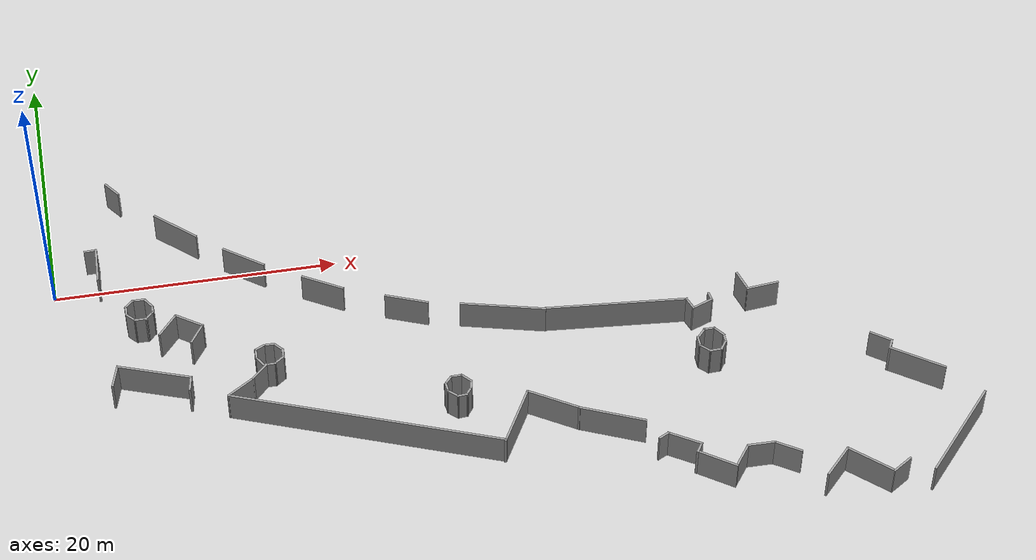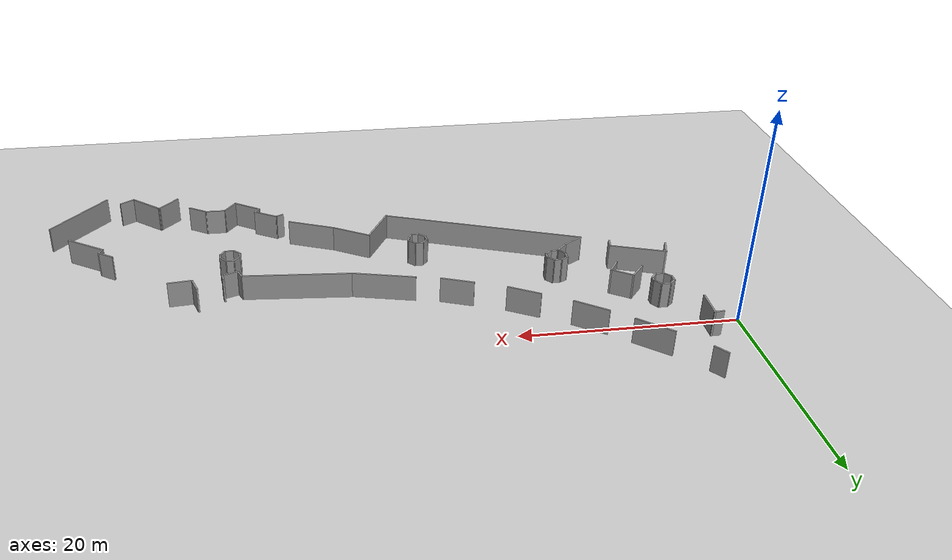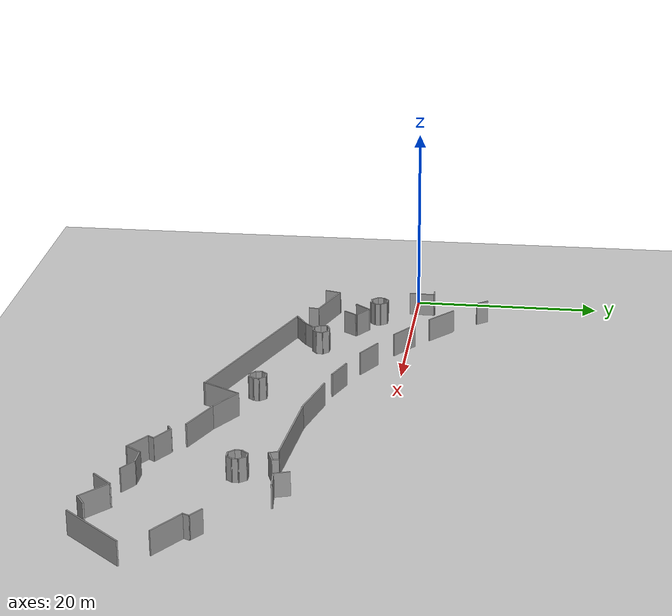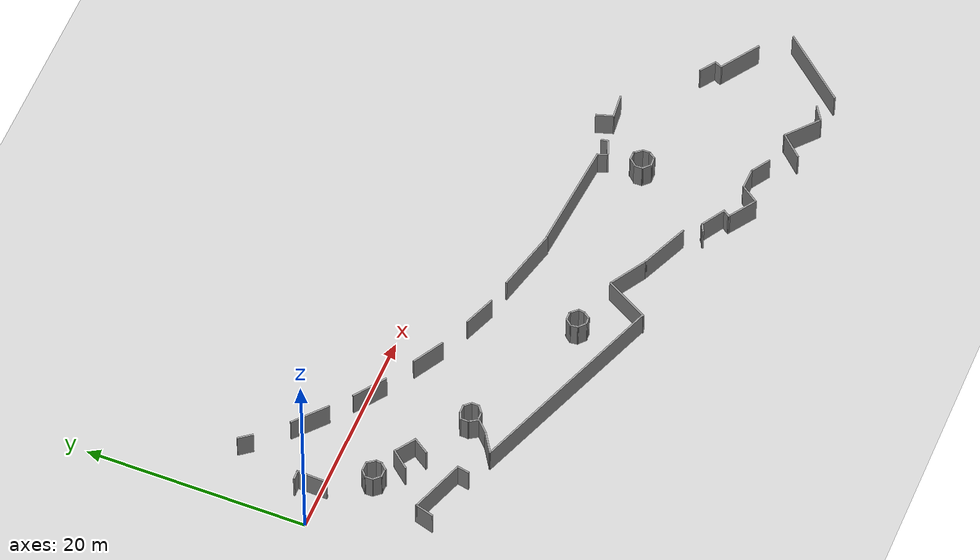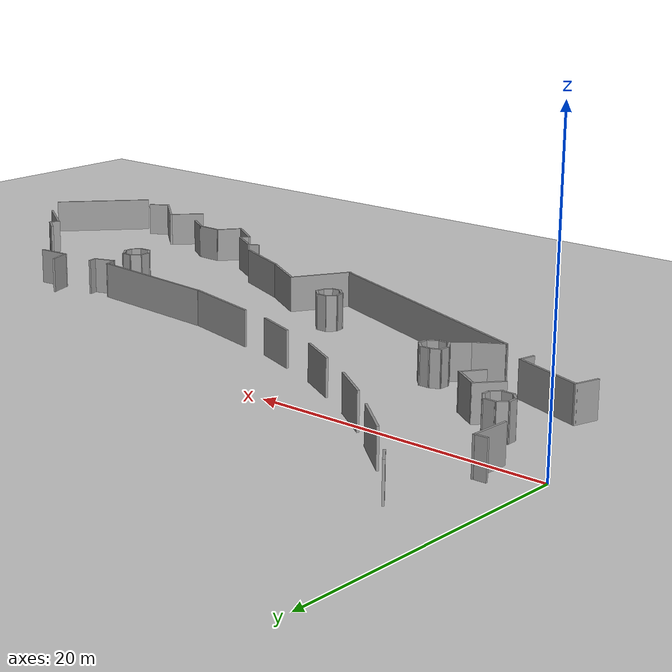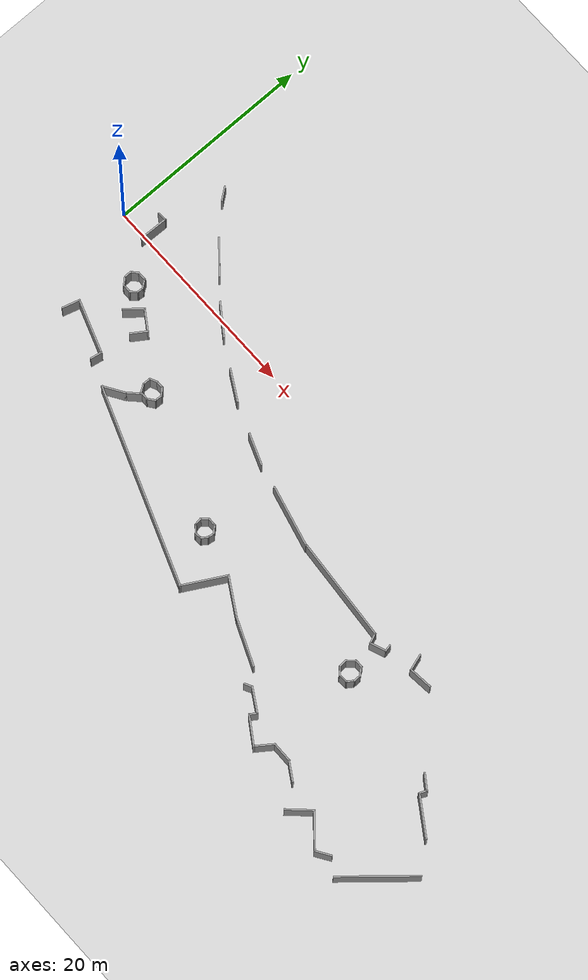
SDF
<sdf version="1.6">
 <world name="default">
  <model name="ground_plane">
   <static>1</static>
   <link name="link">
    <collision name="collision">
     <geometry><plane><normal>0 0 1</normal><size>100 100</size></plane></geometry>
     <surface><friction><ode><mu>100</mu><mu2>50</mu2></ode></friction></surface>
    </collision>
    <visual name="visual">
     <cast_shadows>0</cast_shadows>
     <geometry><plane><normal>0 0 1</normal><size>100 100</size></plane></geometry>
     <material>
      <script><uri>file://media/materials/scripts/gazebo.material</uri><name>Gazebo/Grey</name></script>
     </material>
    </visual>
   </link>
  </model>
  <model name="mall_new_reduce_size">
   <pose>-6.8092 7.5529 0 0 -0 0</pose>
   <link name="Wall_134">
    <collision name="Wall_134_Collision">
     <geometry><box><size>1.4429 0.15 2.5</size></box></geometry>
     <pose>0 0 1.25 0 -0 0</pose>
    </collision>
    <visual name="Wall_134_Visual">
     <pose>0 0 1.25 0 -0 0</pose>
     <geometry><box><size>1.4429 0.15 2.5</size></box></geometry>
     <material>
      <script><uri>file://media/materials/scripts/gazebo.material</uri><name>Gazebo/Grey</name></script>
      <ambient>1 1 1 1</ambient>
     </material>
     <meta><layer>0</layer></meta>
    </visual>
    <pose>11.7178 -0.065856 0 0 -0 -0.919284</pose>
   </link>
   <link name="Wall_137">
    <collision name="Wall_137_Collision">
     <geometry><box><size>3.68143 0.15 2.5</size></box></geometry>
     <pose>0 0 1.25 0 -0 0</pose>
    </collision>
    <visual name="Wall_137_Visual">
     <pose>0 0 1.25 0 -0 0</pose>
     <geometry><box><size>3.68143 0.15 2.5</size></box></geometry>
     <material>
      <script><uri>file://media/materials/scripts/gazebo.material</uri><name>Gazebo/Grey</name></script>
      <ambient>1 1 1 1</ambient>
     </material>
     <meta><layer>0</layer></meta>
    </visual>
    <pose>15.8732 -4.24673 0 0 -0 -0.713439</pose>
   </link>
   <link name="Wall_140">
    <collision name="Wall_140_Collision">
     <geometry><box><size>3.35827 0.15 2.5</size></box></geometry>
     <pose>0 0 1.25 0 -0 0</pose>
    </collision>
    <visual name="Wall_140_Visual">
     <pose>0 0 1.25 0 -0 0</pose>
     <geometry><box><size>3.35827 0.15 2.5</size></box></geometry>
     <material>
      <script><uri>file://media/materials/scripts/gazebo.material</uri><name>Gazebo/Grey</name></script>
      <ambient>1 1 1 1</ambient>
     </material>
     <meta><layer>0</layer></meta>
    </visual>
    <pose>20.3327 -7.86303 0 0 -0 -0.619292</pose>
   </link>
   <link name="Wall_143">
    <collision name="Wall_143_Collision">
     <geometry><box><size>3.17972 0.15 2.5</size></box></geometry>
     <pose>0 0 1.25 0 -0 0</pose>
    </collision>
    <visual name="Wall_143_Visual">
     <pose>0 0 1.25 0 -0 0</pose>
     <geometry><box><size>3.17972 0.15 2.5</size></box></geometry>
     <material>
      <script><uri>file://media/materials/scripts/gazebo.material</uri><name>Gazebo/Grey</name></script>
      <ambient>1 1 1 1</ambient>
     </material>
     <meta><layer>0</layer></meta>
    </visual>
    <pose>25.5439 -11.078 0 0 -0 -0.516247</pose>
   </link>
   <link name="Wall_146">
    <collision name="Wall_146_Collision">
     <geometry><box><size>3.13185 0.15 2.5</size></box></geometry>
     <pose>0 0 1.25 0 -0 0</pose>
    </collision>
    <visual name="Wall_146_Visual">
     <pose>0 0 1.25 0 -0 0</pose>
     <geometry><box><size>3.13185 0.15 2.5</size></box></geometry>
     <material>
      <script><uri>file://media/materials/scripts/gazebo.material</uri><name>Gazebo/Grey</name></script>
      <ambient>1 1 1 1</ambient>
     </material>
     <meta><layer>0</layer></meta>
    </visual>
    <pose>31.1319 -13.5209 0 0 -0 -0.367866</pose>
   </link>
   <link name="Wall_149">
    <collision name="Wall_149_Collision">
     <geometry><box><size>6.0228 0.15 2.5</size></box></geometry>
     <pose>0 0 1.25 0 -0 0</pose>
    </collision>
    <visual name="Wall_149_Visual">
     <pose>0 0 1.25 0 -0 0</pose>
     <geometry><box><size>6.0228 0.15 2.5</size></box></geometry>
     <material>
      <script><uri>file://media/materials/scripts/gazebo.material</uri><name>Gazebo/Grey</name></script>
      <ambient>1 1 1 1</ambient>
     </material>
     <meta><layer>0</layer></meta>
    </visual>
    <pose>37.6627 -15.2721 0 0 -0 -0.24371</pose>
   </link>
   <link name="Wall_150">
    <collision name="Wall_150_Collision">
     <geometry><box><size>10.0902 0.15 2.5</size></box></geometry>
     <pose>0 0 1.25 0 -0 0</pose>
    </collision>
    <visual name="Wall_150_Visual">
     <pose>0 0 1.25 0 -0 0</pose>
     <geometry><box><size>10.0902 0.15 2.5</size></box></geometry>
     <material>
      <script><uri>file://media/materials/scripts/gazebo.material</uri><name>Gazebo/Grey</name></script>
      <ambient>1 1 1 1</ambient>
     </material>
     <meta><layer>0</layer></meta>
    </visual>
    <pose>45.4742 -16.3538 0 0 -0 -0.081987</pose>
   </link>
   <link name="Wall_151">
    <collision name="Wall_151_Collision">
     <geometry><box><size>1.07037 0.15 2.5</size></box></geometry>
     <pose>0 0 1.25 0 -0 0</pose>
    </collision>
    <visual name="Wall_151_Visual">
     <pose>0 0 1.25 0 -0 0</pose>
     <geometry><box><size>1.07037 0.15 2.5</size></box></geometry>
     <material>
      <script><uri>file://media/materials/scripts/gazebo.material</uri><name>Gazebo/Grey</name></script>
      <ambient>1 1 1 1</ambient>
     </material>
     <meta><layer>0</layer></meta>
    </visual>
    <pose>50.5839 -17.1905 0 0 -0 -1.20463</pose>
   </link>
   <link name="Wall_152">
    <collision name="Wall_152_Collision">
     <geometry><box><size>1.64204 0.15 2.5</size></box></geometry>
     <pose>0 0 1.25 0 -0 0</pose>
    </collision>
    <visual name="Wall_152_Visual">
     <pose>0 0 1.25 0 -0 0</pose>
     <geometry><box><size>1.64204 0.15 2.5</size></box></geometry>
     <material>
      <script><uri>file://media/materials/scripts/gazebo.material</uri><name>Gazebo/Grey</name></script>
      <ambient>1 1 1 1</ambient>
     </material>
     <meta><layer>0</layer></meta>
    </visual>
    <pose>51.4454 -17.3621 0 0 -0 0.365329</pose>
   </link>
   <link name="Wall_153">
    <collision name="Wall_153_Collision">
     <geometry><box><size>0.719382 0.15 2.5</size></box></geometry>
     <pose>0 0 1.25 0 -0 0</pose>
    </collision>
    <visual name="Wall_153_Visual">
     <pose>0 0 1.25 0 -0 0</pose>
     <geometry><box><size>0.719382 0.15 2.5</size></box></geometry>
     <material>
      <script><uri>file://media/materials/scripts/gazebo.material</uri><name>Gazebo/Grey</name></script>
      <ambient>1 1 1 1</ambient>
     </material>
     <meta><layer>0</layer></meta>
    </visual>
    <pose>52.104 -16.8147 0 0 -0 1.73536</pose>
   </link>
   <link name="Wall_156">
    <collision name="Wall_156_Collision">
     <geometry><box><size>1.66975 0.15 2.5</size></box></geometry>
     <pose>0 0 1.25 0 -0 0</pose>
    </collision>
    <visual name="Wall_156_Visual">
     <pose>0 0 1.25 0 -0 0</pose>
     <geometry><box><size>1.66975 0.15 2.5</size></box></geometry>
     <material>
      <script><uri>file://media/materials/scripts/gazebo.material</uri><name>Gazebo/Grey</name></script>
      <ambient>1 1 1 1</ambient>
     </material>
     <meta><layer>0</layer></meta>
    </visual>
    <pose>54.6252 -15.8323 0 0 -0 -1.27154</pose>
   </link>
   <link name="Wall_157">
    <collision name="Wall_157_Collision">
     <geometry><box><size>2.34099 0.15 2.5</size></box></geometry>
     <pose>0 0 1.25 0 -0 0</pose>
    </collision>
    <visual name="Wall_157_Visual">
     <pose>0 0 1.25 0 -0 0</pose>
     <geometry><box><size>2.34099 0.15 2.5</size></box></geometry>
     <material>
      <script><uri>file://media/materials/scripts/gazebo.material</uri><name>Gazebo/Grey</name></script>
      <ambient>1 1 1 1</ambient>
     </material>
     <meta><layer>0</layer></meta>
    </visual>
    <pose>55.9396 -16.4609 0 0 -0 0.096908</pose>
   </link>
   <link name="Wall_160">
    <collision name="Wall_160_Collision">
     <geometry><box><size>0.922115 0.15 2.5</size></box></geometry>
     <pose>0 0 1.25 0 -0 0</pose>
    </collision>
    <visual name="Wall_160_Visual">
     <pose>0 0 1.25 0 -0 0</pose>
     <geometry><box><size>0.922115 0.15 2.5</size></box></geometry>
     <material>
      <script><uri>file://media/materials/scripts/gazebo.material</uri><name>Gazebo/Grey</name></script>
      <ambient>1 1 1 1</ambient>
     </material>
     <meta><layer>0</layer></meta>
    </visual>
    <pose>50.8361 -19.9069 0 0 -0 0.843659</pose>
   </link>
   <link name="Wall_161">
    <collision name="Wall_161_Collision">
     <geometry><box><size>0.855974 0.15 2.5</size></box></geometry>
     <pose>0 0 1.25 0 -0 0</pose>
    </collision>
    <visual name="Wall_161_Visual">
     <pose>0 0 1.25 0 -0 0</pose>
     <geometry><box><size>0.855974 0.15 2.5</size></box></geometry>
     <material>
      <script><uri>file://media/materials/scripts/gazebo.material</uri><name>Gazebo/Grey</name></script>
      <ambient>1 1 1 1</ambient>
     </material>
     <meta><layer>0</layer></meta>
    </visual>
    <pose>51.4457 -19.6069 0 0 -0 0.008949</pose>
   </link>
   <link name="Wall_162">
    <collision name="Wall_162_Collision">
     <geometry><box><size>1.02706 0.15 2.5</size></box></geometry>
     <pose>0 0 1.25 0 -0 0</pose>
    </collision>
    <visual name="Wall_162_Visual">
     <pose>0 0 1.25 0 -0 0</pose>
     <geometry><box><size>1.02706 0.15 2.5</size></box></geometry>
     <material>
      <script><uri>file://media/materials/scripts/gazebo.material</uri><name>Gazebo/Grey</name></script>
      <ambient>1 1 1 1</ambient>
     </material>
     <meta><layer>0</layer></meta>
    </visual>
    <pose>52.0627 -19.9472 0 0 -0 -0.900073</pose>
   </link>
   <link name="Wall_163">
    <collision name="Wall_163_Collision">
     <geometry><box><size>0.756321 0.15 2.5</size></box></geometry>
     <pose>0 0 1.25 0 -0 0</pose>
    </collision>
    <visual name="Wall_163_Visual">
     <pose>0 0 1.25 0 -0 0</pose>
     <geometry><box><size>0.756321 0.15 2.5</size></box></geometry>
     <material>
      <script><uri>file://media/materials/scripts/gazebo.material</uri><name>Gazebo/Grey</name></script>
      <ambient>1 1 1 1</ambient>
     </material>
     <meta><layer>0</layer></meta>
    </visual>
    <pose>52.3278 -20.5939 0 0 -0 -1.56745</pose>
   </link>
   <link name="Wall_164">
    <collision name="Wall_164_Collision">
     <geometry><box><size>0.854712 0.15 2.5</size></box></geometry>
     <pose>0 0 1.25 0 -0 0</pose>
    </collision>
    <visual name="Wall_164_Visual">
     <pose>0 0 1.25 0 -0 0</pose>
     <geometry><box><size>0.854712 0.15 2.5</size></box></geometry>
     <material>
      <script><uri>file://media/materials/scripts/gazebo.material</uri><name>Gazebo/Grey</name></script>
      <ambient>1 1 1 1</ambient>
     </material>
     <meta><layer>0</layer></meta>
    </visual>
    <pose>52.1195 -21.1866 0 0 -0 -2.17742</pose>
   </link>
   <link name="Wall_165">
    <collision name="Wall_165_Collision">
     <geometry><box><size>0.950864 0.15 2.5</size></box></geometry>
     <pose>0 0 1.25 0 -0 0</pose>
    </collision>
    <visual name="Wall_165_Visual">
     <pose>0 0 1.25 0 -0 0</pose>
     <geometry><box><size>0.950864 0.15 2.5</size></box></geometry>
     <material>
      <script><uri>file://media/materials/scripts/gazebo.material</uri><name>Gazebo/Grey</name></script>
      <ambient>1 1 1 1</ambient>
     </material>
     <meta><layer>0</layer></meta>
    </visual>
    <pose>51.5271 -21.4943 0 0 -0 -3.09591</pose>
   </link>
   <link name="Wall_166">
    <collision name="Wall_166_Collision">
     <geometry><box><size>0.977095 0.15 2.5</size></box></geometry>
     <pose>0 0 1.25 0 -0 0</pose>
    </collision>
    <visual name="Wall_166_Visual">
     <pose>0 0 1.25 0 -0 0</pose>
     <geometry><box><size>0.977095 0.15 2.5</size></box></geometry>
     <material>
      <script><uri>file://media/materials/scripts/gazebo.material</uri><name>Gazebo/Grey</name></script>
      <ambient>1 1 1 1</ambient>
     </material>
     <meta><layer>0</layer></meta>
    </visual>
    <pose>50.8226 -21.2238 0 0 -0 2.36845</pose>
   </link>
   <link name="Wall_167">
    <collision name="Wall_167_Collision">
     <geometry><box><size>0.862803 0.15 2.5</size></box></geometry>
     <pose>0 0 1.25 0 -0 0</pose>
    </collision>
    <visual name="Wall_167_Visual">
     <pose>0 0 1.25 0 -0 0</pose>
     <geometry><box><size>0.862803 0.15 2.5</size></box></geometry>
     <material>
      <script><uri>file://media/materials/scripts/gazebo.material</uri><name>Gazebo/Grey</name></script>
      <ambient>1 1 1 1</ambient>
     </material>
     <meta><layer>0</layer></meta>
    </visual>
    <pose>50.5217 -20.5788 0 0 -0 1.60849</pose>
   </link>
   <link name="Wall_170">
    <collision name="Wall_170_Collision">
     <geometry><box><size>1.71198 0.15 2.5</size></box></geometry>
     <pose>0 0 1.25 0 -0 0</pose>
    </collision>
    <visual name="Wall_170_Visual">
     <pose>0 0 1.25 0 -0 0</pose>
     <geometry><box><size>1.71198 0.15 2.5</size></box></geometry>
     <material>
      <script><uri>file://media/materials/scripts/gazebo.material</uri><name>Gazebo/Grey</name></script>
      <ambient>1 1 1 1</ambient>
     </material>
     <meta><layer>0</layer></meta>
    </visual>
    <pose>63.0306 -22.2425 0 0 -0 -0.612119</pose>
   </link>
   <link name="Wall_171">
    <collision name="Wall_171_Collision">
     <geometry><box><size>0.839183 0.15 2.5</size></box></geometry>
     <pose>0 0 1.25 0 -0 0</pose>
    </collision>
    <visual name="Wall_171_Visual">
     <pose>0 0 1.25 0 -0 0</pose>
     <geometry><box><size>0.839183 0.15 2.5</size></box></geometry>
     <material>
      <script><uri>file://media/materials/scripts/gazebo.material</uri><name>Gazebo/Grey</name></script>
      <ambient>1 1 1 1</ambient>
     </material>
     <meta><layer>0</layer></meta>
    </visual>
    <pose>63.5354 -23.0042 0 0 -0 -2.00233</pose>
   </link>
   <link name="Wall_172">
    <collision name="Wall_172_Collision">
     <geometry><box><size>4.15243 0.15 2.5</size></box></geometry>
     <pose>0 0 1.25 0 -0 0</pose>
    </collision>
    <visual name="Wall_172_Visual">
     <pose>0 0 1.25 0 -0 0</pose>
     <geometry><box><size>4.15243 0.15 2.5</size></box></geometry>
     <material>
      <script><uri>file://media/materials/scripts/gazebo.material</uri><name>Gazebo/Grey</name></script>
      <ambient>1 1 1 1</ambient>
     </material>
     <meta><layer>0</layer></meta>
    </visual>
    <pose>65.0743 -24.4298 0 0 -0 -0.589468</pose>
   </link>
   <link name="Wall_175">
    <collision name="Wall_175_Collision">
     <geometry><box><size>7.63134 0.15 2.5</size></box></geometry>
     <pose>0 0 1.25 0 -0 0</pose>
    </collision>
    <visual name="Wall_175_Visual">
     <pose>0 0 1.25 0 -0 0</pose>
     <geometry><box><size>7.63134 0.15 2.5</size></box></geometry>
     <material>
      <script><uri>file://media/materials/scripts/gazebo.material</uri><name>Gazebo/Grey</name></script>
      <ambient>1 1 1 1</ambient>
     </material>
     <meta><layer>0</layer></meta>
    </visual>
    <pose>66.4001 -30.8567 0 0 -0 -2.28745</pose>
   </link>
   <link name="Wall_178">
    <collision name="Wall_178_Collision">
     <geometry><box><size>2.71113 0.15 2.5</size></box></geometry>
     <pose>0 0 1.25 0 -0 0</pose>
    </collision>
    <visual name="Wall_178_Visual">
     <pose>0 0 1.25 0 -0 0</pose>
     <geometry><box><size>2.71113 0.15 2.5</size></box></geometry>
     <material>
      <script><uri>file://media/materials/scripts/gazebo.material</uri><name>Gazebo/Grey</name></script>
      <ambient>1 1 1 1</ambient>
     </material>
     <meta><layer>0</layer></meta>
    </visual>
    <pose>57.6342 -32.0142 0 0 -0 0.814065</pose>
   </link>
   <link name="Wall_179">
    <collision name="Wall_179_Collision">
     <geometry><box><size>3.68959 0.15 2.5</size></box></geometry>
     <pose>0 0 1.25 0 -0 0</pose>
    </collision>
    <visual name="Wall_179_Visual">
     <pose>0 0 1.25 0 -0 0</pose>
     <geometry><box><size>3.68959 0.15 2.5</size></box></geometry>
     <material>
      <script><uri>file://media/materials/scripts/gazebo.material</uri><name>Gazebo/Grey</name></script>
      <ambient>1 1 1 1</ambient>
     </material>
     <meta><layer>0</layer></meta>
    </visual>
    <pose>59.8368 -32.2413 0 0 -0 -0.713396</pose>
   </link>
   <link name="Wall_180">
    <collision name="Wall_180_Collision">
     <geometry><box><size>1.63637 0.15 2.5</size></box></geometry>
     <pose>0 0 1.25 0 -0 0</pose>
    </collision>
    <visual name="Wall_180_Visual">
     <pose>0 0 1.25 0 -0 0</pose>
     <geometry><box><size>1.63637 0.15 2.5</size></box></geometry>
     <material>
      <script><uri>file://media/materials/scripts/gazebo.material</uri><name>Gazebo/Grey</name></script>
      <ambient>1 1 1 1</ambient>
     </material>
     <meta><layer>0</layer></meta>
    </visual>
    <pose>61.8128 -33.009 0 0 -0 0.576763</pose>
   </link>
   <link name="Wall_183">
    <collision name="Wall_183_Collision">
     <geometry><box><size>0.858507 0.15 2.5</size></box></geometry>
     <pose>0 0 1.25 0 -0 0</pose>
    </collision>
    <visual name="Wall_183_Visual">
     <pose>0 0 1.25 0 -0 0</pose>
     <geometry><box><size>0.858507 0.15 2.5</size></box></geometry>
     <material>
      <script><uri>file://media/materials/scripts/gazebo.material</uri><name>Gazebo/Grey</name></script>
      <ambient>1 1 1 1</ambient>
     </material>
     <meta><layer>0</layer></meta>
    </visual>
    <pose>46.5261 -28.0243 0 0 -0 0.469325</pose>
   </link>
   <link name="Wall_184">
    <collision name="Wall_184_Collision">
     <geometry><box><size>2.54291 0.15 2.5</size></box></geometry>
     <pose>0 0 1.25 0 -0 0</pose>
    </collision>
    <visual name="Wall_184_Visual">
     <pose>0 0 1.25 0 -0 0</pose>
     <geometry><box><size>2.54291 0.15 2.5</size></box></geometry>
     <material>
      <script><uri>file://media/materials/scripts/gazebo.material</uri><name>Gazebo/Grey</name></script>
      <ambient>1 1 1 1</ambient>
     </material>
     <meta><layer>0</layer></meta>
    </visual>
    <pose>47.867 -28.4664 0 0 -0 -0.541971</pose>
   </link>
   <link name="Wall_185">
    <collision name="Wall_185_Collision">
     <geometry><box><size>0.862335 0.15 2.5</size></box></geometry>
     <pose>0 0 1.25 0 -0 0</pose>
    </collision>
    <visual name="Wall_185_Visual">
     <pose>0 0 1.25 0 -0 0</pose>
     <geometry><box><size>0.862335 0.15 2.5</size></box></geometry>
     <material>
      <script><uri>file://media/materials/scripts/gazebo.material</uri><name>Gazebo/Grey</name></script>
      <ambient>1 1 1 1</ambient>
     </material>
     <meta><layer>0</layer></meta>
    </visual>
    <pose>48.6957 -29.3956 0 0 -0 -2.15451</pose>
   </link>
   <link name="Wall_186">
    <collision name="Wall_186_Collision">
     <geometry><box><size>2.98998 0.15 2.5</size></box></geometry>
     <pose>0 0 1.25 0 -0 0</pose>
    </collision>
    <visual name="Wall_186_Visual">
     <pose>0 0 1.25 0 -0 0</pose>
     <geometry><box><size>2.98998 0.15 2.5</size></box></geometry>
     <material>
      <script><uri>file://media/materials/scripts/gazebo.material</uri><name>Gazebo/Grey</name></script>
      <ambient>1 1 1 1</ambient>
     </material>
     <meta><layer>0</layer></meta>
    </visual>
    <pose>49.6816 -30.4646 0 0 -0 -0.587145</pose>
   </link>
   <link name="Wall_187">
    <collision name="Wall_187_Collision">
     <geometry><box><size>1.97307 0.15 2.5</size></box></geometry>
     <pose>0 0 1.25 0 -0 0</pose>
    </collision>
    <visual name="Wall_187_Visual">
     <pose>0 0 1.25 0 -0 0</pose>
     <geometry><box><size>1.97307 0.15 2.5</size></box></geometry>
     <material>
      <script><uri>file://media/materials/scripts/gazebo.material</uri><name>Gazebo/Grey</name></script>
      <ambient>1 1 1 1</ambient>
     </material>
     <meta><layer>0</layer></meta>
    </visual>
    <pose>51.4004 -30.4996 0 0 -0 0.941346</pose>
   </link>
   <link name="Wall_188">
    <collision name="Wall_188_Collision">
     <geometry><box><size>2.01359 0.15 2.5</size></box></geometry>
     <pose>0 0 1.25 0 -0 0</pose>
    </collision>
    <visual name="Wall_188_Visual">
     <pose>0 0 1.25 0 -0 0</pose>
     <geometry><box><size>2.01359 0.15 2.5</size></box></geometry>
     <material>
      <script><uri>file://media/materials/scripts/gazebo.material</uri><name>Gazebo/Grey</name></script>
      <ambient>1 1 1 1</ambient>
     </material>
     <meta><layer>0</layer></meta>
    </visual>
    <pose>52.8836 -29.7761 0 0 -0 -0.014355</pose>
   </link>
   <link name="Wall_189">
    <collision name="Wall_189_Collision">
     <geometry><box><size>2.02693 0.15 2.5</size></box></geometry>
     <pose>0 0 1.25 0 -0 0</pose>
    </collision>
    <visual name="Wall_189_Visual">
     <pose>0 0 1.25 0 -0 0</pose>
     <geometry><box><size>2.02693 0.15 2.5</size></box></geometry>
     <material>
      <script><uri>file://media/materials/scripts/gazebo.material</uri><name>Gazebo/Grey</name></script>
      <ambient>1 1 1 1</ambient>
     </material>
     <meta><layer>0</layer></meta>
    </visual>
    <pose>54.6104 -30.3028 0 0 -0 -0.560016</pose>
   </link>
   <link name="Wall_192">
    <collision name="Wall_192_Collision">
     <geometry><box><size>0.832832 0.15 2.5</size></box></geometry>
     <pose>0 0 1.25 0 -0 0</pose>
    </collision>
    <visual name="Wall_192_Visual">
     <pose>0 0 1.25 0 -0 0</pose>
     <geometry><box><size>0.832832 0.15 2.5</size></box></geometry>
     <material>
      <script><uri>file://media/materials/scripts/gazebo.material</uri><name>Gazebo/Grey</name></script>
      <ambient>1 1 1 1</ambient>
     </material>
     <meta><layer>0</layer></meta>
    </visual>
    <pose>33.5298 -20.7354 0 0 -0 0.01145</pose>
   </link>
   <link name="Wall_193">
    <collision name="Wall_193_Collision">
     <geometry><box><size>0.969314 0.15 2.5</size></box></geometry>
     <pose>0 0 1.25 0 -0 0</pose>
    </collision>
    <visual name="Wall_193_Visual">
     <pose>0 0 1.25 0 -0 0</pose>
     <geometry><box><size>0.969314 0.15 2.5</size></box></geometry>
     <material>
      <script><uri>file://media/materials/scripts/gazebo.material</uri><name>Gazebo/Grey</name></script>
      <ambient>1 1 1 1</ambient>
     </material>
     <meta><layer>0</layer></meta>
    </visual>
    <pose>34.1496 -21.0246 0 0 -0 -0.82359</pose>
   </link>
   <link name="Wall_194">
    <collision name="Wall_194_Collision">
     <geometry><box><size>0.727807 0.15 2.5</size></box></geometry>
     <pose>0 0 1.25 0 -0 0</pose>
    </collision>
    <visual name="Wall_194_Visual">
     <pose>0 0 1.25 0 -0 0</pose>
     <geometry><box><size>0.727807 0.15 2.5</size></box></geometry>
     <material>
      <script><uri>file://media/materials/scripts/gazebo.material</uri><name>Gazebo/Grey</name></script>
      <ambient>1 1 1 1</ambient>
     </material>
     <meta><layer>0</layer></meta>
    </visual>
    <pose>34.3875 -21.61 0 0 -0 -1.73747</pose>
   </link>
   <link name="Wall_195">
    <collision name="Wall_195_Collision">
     <geometry><box><size>0.794161 0.15 2.5</size></box></geometry>
     <pose>0 0 1.25 0 -0 0</pose>
    </collision>
    <visual name="Wall_195_Visual">
     <pose>0 0 1.25 0 -0 0</pose>
     <geometry><box><size>0.794161 0.15 2.5</size></box></geometry>
     <material>
      <script><uri>file://media/materials/scripts/gazebo.material</uri><name>Gazebo/Grey</name></script>
      <ambient>1 1 1 1</ambient>
     </material>
     <meta><layer>0</layer></meta>
    </visual>
    <pose>34.1495 -22.1476 0 0 -0 -2.20179</pose>
   </link>
   <link name="Wall_196">
    <collision name="Wall_196_Collision">
     <geometry><box><size>0.759563 0.15 2.5</size></box></geometry>
     <pose>0 0 1.25 0 -0 0</pose>
    </collision>
    <visual name="Wall_196_Visual">
     <pose>0 0 1.25 0 -0 0</pose>
     <geometry><box><size>0.759563 0.15 2.5</size></box></geometry>
     <material>
      <script><uri>file://media/materials/scripts/gazebo.material</uri><name>Gazebo/Grey</name></script>
      <ambient>1 1 1 1</ambient>
     </material>
     <meta><layer>0</layer></meta>
    </visual>
    <pose>33.6632 -22.4335 0 0 -0 -3.05681</pose>
   </link>
   <link name="Wall_197">
    <collision name="Wall_197_Collision">
     <geometry><box><size>0.959364 0.15 2.5</size></box></geometry>
     <pose>0 0 1.25 0 -0 0</pose>
    </collision>
    <visual name="Wall_197_Visual">
     <pose>0 0 1.25 0 -0 0</pose>
     <geometry><box><size>0.959364 0.15 2.5</size></box></geometry>
     <material>
      <script><uri>file://media/materials/scripts/gazebo.material</uri><name>Gazebo/Grey</name></script>
      <ambient>1 1 1 1</ambient>
     </material>
     <meta><layer>0</layer></meta>
    </visual>
    <pose>33.0516 -22.1883 0 0 -0 2.40775</pose>
   </link>
   <link name="Wall_198">
    <collision name="Wall_198_Collision">
     <geometry><box><size>0.773848 0.15 2.5</size></box></geometry>
     <pose>0 0 1.25 0 -0 0</pose>
    </collision>
    <visual name="Wall_198_Visual">
     <pose>0 0 1.25 0 -0 0</pose>
     <geometry><box><size>0.773848 0.15 2.5</size></box></geometry>
     <material>
      <script><uri>file://media/materials/scripts/gazebo.material</uri><name>Gazebo/Grey</name></script>
      <ambient>1 1 1 1</ambient>
     </material>
     <meta><layer>0</layer></meta>
    </visual>
    <pose>32.7095 -21.6007 0 0 -0 1.70458</pose>
   </link>
   <link name="Wall_199">
    <collision name="Wall_199_Collision">
     <geometry><box><size>0.798164 0.15 2.5</size></box></geometry>
     <pose>0 0 1.25 0 -0 0</pose>
    </collision>
    <visual name="Wall_199_Visual">
     <pose>0 0 1.25 0 -0 0</pose>
     <geometry><box><size>0.798164 0.15 2.5</size></box></geometry>
     <material>
      <script><uri>file://media/materials/scripts/gazebo.material</uri><name>Gazebo/Grey</name></script>
      <ambient>1 1 1 1</ambient>
     </material>
     <meta><layer>0</layer></meta>
    </visual>
    <pose>32.8802 -21.032 0 0 -0 0.856375</pose>
   </link>
   <link name="Wall_202">
    <collision name="Wall_202_Collision">
     <geometry><box><size>4.76377 0.15 2.5</size></box></geometry>
     <pose>0 0 1.25 0 -0 0</pose>
    </collision>
    <visual name="Wall_202_Visual">
     <pose>0 0 1.25 0 -0 0</pose>
     <geometry><box><size>4.76377 0.15 2.5</size></box></geometry>
     <material>
      <script><uri>file://media/materials/scripts/gazebo.material</uri><name>Gazebo/Grey</name></script>
      <ambient>1 1 1 1</ambient>
     </material>
     <meta><layer>0</layer></meta>
    </visual>
    <pose>43.4434 -25.6711 0 0 -0 2.74033</pose>
   </link>
   <link name="Wall_203">
    <collision name="Wall_203_Collision">
     <geometry><box><size>3.92628 0.15 2.5</size></box></geometry>
     <pose>0 0 1.25 0 -0 0</pose>
    </collision>
    <visual name="Wall_203_Visual">
     <pose>0 0 1.25 0 -0 0</pose>
     <geometry><box><size>3.92628 0.15 2.5</size></box></geometry>
     <material>
      <script><uri>file://media/materials/scripts/gazebo.material</uri><name>Gazebo/Grey</name></script>
      <ambient>1 1 1 1</ambient>
     </material>
     <meta><layer>0</layer></meta>
    </visual>
    <pose>39.7148 -23.7993 0 0 -0 2.6016</pose>
   </link>
   <link name="Wall_204">
    <collision name="Wall_204_Collision">
     <geometry><box><size>4.53256 0.15 2.5</size></box></geometry>
     <pose>0 0 1.25 0 -0 0</pose>
    </collision>
    <visual name="Wall_204_Visual">
     <pose>0 0 1.25 0 -0 0</pose>
     <geometry><box><size>4.53256 0.15 2.5</size></box></geometry>
     <material>
      <script><uri>file://media/materials/scripts/gazebo.material</uri><name>Gazebo/Grey</name></script>
      <ambient>1 1 1 1</ambient>
     </material>
     <meta><layer>0</layer></meta>
    </visual>
    <pose>37.0041 -24.7371 0 0 -0 -2.08443</pose>
   </link>
   <link name="Wall_205">
    <collision name="Wall_205_Collision">
     <geometry><box><size>19.4256 0.15 2.5</size></box></geometry>
     <pose>0 0 1.25 0 -0 0</pose>
    </collision>
    <visual name="Wall_205_Visual">
     <pose>0 0 1.25 0 -0 0</pose>
     <geometry><box><size>19.4256 0.15 2.5</size></box></geometry>
     <material>
      <script><uri>file://media/materials/scripts/gazebo.material</uri><name>Gazebo/Grey</name></script>
      <ambient>1 1 1 1</ambient>
     </material>
     <meta><layer>0</layer></meta>
    </visual>
    <pose>26.9482 -23.2 0 0 -0 2.78246</pose>
   </link>
   <link name="Wall_207">
    <collision name="Wall_207_Collision">
     <geometry><box><size>2.2822 0.15 2.5</size></box></geometry>
     <pose>0 0 1.25 0 -0 0</pose>
    </collision>
    <visual name="Wall_207_Visual">
     <pose>0 0 1.25 0 -0 0</pose>
     <geometry><box><size>2.2822 0.15 2.5</size></box></geometry>
     <material>
      <script><uri>file://media/materials/scripts/gazebo.material</uri><name>Gazebo/Grey</name></script>
      <ambient>1 1 1 1</ambient>
     </material>
     <meta><layer>0</layer></meta>
    </visual>
    <pose>18.8386 -19.2246 0 0 -0 0.567895</pose>
   </link>
   <link name="Wall_208">
    <collision name="Wall_208_Collision">
     <geometry><box><size>1.61268 0.15 2.5</size></box></geometry>
     <pose>0 0 1.25 0 -0 0</pose>
    </collision>
    <visual name="Wall_208_Visual">
     <pose>0 0 1.25 0 -0 0</pose>
     <geometry><box><size>1.61268 0.15 2.5</size></box></geometry>
     <material>
      <script><uri>file://media/materials/scripts/gazebo.material</uri><name>Gazebo/Grey</name></script>
      <ambient>1 1 1 1</ambient>
     </material>
     <meta><layer>0</layer></meta>
    </visual>
    <pose>20.2619 -18.127 0 0 -0 0.770921</pose>
   </link>
   <link name="Wall_211">
    <collision name="Wall_211_Collision">
     <geometry><box><size>0.75 0.15 2.5</size></box></geometry>
     <pose>0 0 1.25 0 -0 0</pose>
    </collision>
    <visual name="Wall_211_Visual">
     <pose>0 0 1.25 0 -0 0</pose>
     <geometry><box><size>0.75 0.15 2.5</size></box></geometry>
     <material>
      <script><uri>file://media/materials/scripts/gazebo.material</uri><name>Gazebo/Grey</name></script>
      <ambient>1 1 1 1</ambient>
     </material>
     <meta><layer>0</layer></meta>
    </visual>
    <pose>21.0865 -17.6175 0 0 -0 0</pose>
   </link>
   <link name="Wall_212">
    <collision name="Wall_212_Collision">
     <geometry><box><size>0.928514 0.15 2.5</size></box></geometry>
     <pose>0 0 1.25 0 -0 0</pose>
    </collision>
    <visual name="Wall_212_Visual">
     <pose>0 0 1.25 0 -0 0</pose>
     <geometry><box><size>0.928514 0.15 2.5</size></box></geometry>
     <material>
      <script><uri>file://media/materials/scripts/gazebo.material</uri><name>Gazebo/Grey</name></script>
      <ambient>1 1 1 1</ambient>
     </material>
     <meta><layer>0</layer></meta>
    </visual>
    <pose>21.6967 -17.3823 0 0 -0 0.648482</pose>
   </link>
   <link name="Wall_213">
    <collision name="Wall_213_Collision">
     <geometry><box><size>0.794621 0.15 2.5</size></box></geometry>
     <pose>0 0 1.25 0 -0 0</pose>
    </collision>
    <visual name="Wall_213_Visual">
     <pose>0 0 1.25 0 -0 0</pose>
     <geometry><box><size>0.794621 0.15 2.5</size></box></geometry>
     <material>
      <script><uri>file://media/materials/scripts/gazebo.material</uri><name>Gazebo/Grey</name></script>
      <ambient>1 1 1 1</ambient>
     </material>
     <meta><layer>0</layer></meta>
    </visual>
    <pose>22.0259 -16.8252 0 0 -0 1.53167</pose>
   </link>
   <link name="Wall_214">
    <collision name="Wall_214_Collision">
     <geometry><box><size>0.927153 0.15 2.5</size></box></geometry>
     <pose>0 0 1.25 0 -0 0</pose>
    </collision>
    <visual name="Wall_214_Visual">
     <pose>0 0 1.25 0 -0 0</pose>
     <geometry><box><size>0.927153 0.15 2.5</size></box></geometry>
     <material>
      <script><uri>file://media/materials/scripts/gazebo.material</uri><name>Gazebo/Grey</name></script>
      <ambient>1 1 1 1</ambient>
     </material>
     <meta><layer>0</layer></meta>
    </visual>
    <pose>21.7755 -16.2107 0 0 -0 2.314</pose>
   </link>
   <link name="Wall_215">
    <collision name="Wall_215_Collision">
     <geometry><box><size>0.819343 0.15 2.5</size></box></geometry>
     <pose>0 0 1.25 0 -0 0</pose>
    </collision>
    <visual name="Wall_215_Visual">
     <pose>0 0 1.25 0 -0 0</pose>
     <geometry><box><size>0.819343 0.15 2.5</size></box></geometry>
     <material>
      <script><uri>file://media/materials/scripts/gazebo.material</uri><name>Gazebo/Grey</name></script>
      <ambient>1 1 1 1</ambient>
     </material>
     <meta><layer>0</layer></meta>
    </visual>
    <pose>21.1716 -15.9246 0 0 -0 3.14159</pose>
   </link>
   <link name="Wall_216">
    <collision name="Wall_216_Collision">
     <geometry><box><size>0.843381 0.15 2.5</size></box></geometry>
     <pose>0 0 1.25 0 -0 0</pose>
    </collision>
    <visual name="Wall_216_Visual">
     <pose>0 0 1.25 0 -0 0</pose>
     <geometry><box><size>0.843381 0.15 2.5</size></box></geometry>
     <material>
      <script><uri>file://media/materials/scripts/gazebo.material</uri><name>Gazebo/Grey</name></script>
      <ambient>1 1 1 1</ambient>
     </material>
     <meta><layer>0</layer></meta>
    </visual>
    <pose>20.5177 -16.0737 0 0 -0 -2.69705</pose>
   </link>
   <link name="Wall_217">
    <collision name="Wall_217_Collision">
     <geometry><box><size>0.856005 0.15 2.5</size></box></geometry>
     <pose>0 0 1.25 0 -0 0</pose>
    </collision>
    <visual name="Wall_217_Visual">
     <pose>0 0 1.25 0 -0 0</pose>
     <geometry><box><size>0.856005 0.15 2.5</size></box></geometry>
     <material>
      <script><uri>file://media/materials/scripts/gazebo.material</uri><name>Gazebo/Grey</name></script>
      <ambient>1 1 1 1</ambient>
     </material>
     <meta><layer>0</layer></meta>
    </visual>
    <pose>20.1932 -16.5819 0 0 -0 -1.60325</pose>
   </link>
   <link name="Wall_218">
    <collision name="Wall_218_Collision">
     <geometry><box><size>1.06985 0.15 2.5</size></box></geometry>
     <pose>0 0 1.25 0 -0 0</pose>
    </collision>
    <visual name="Wall_218_Visual">
     <pose>0 0 1.25 0 -0 0</pose>
     <geometry><box><size>1.06985 0.15 2.5</size></box></geometry>
     <material>
      <script><uri>file://media/materials/scripts/gazebo.material</uri><name>Gazebo/Grey</name></script>
      <ambient>1 1 1 1</ambient>
     </material>
     <meta><layer>0</layer></meta>
    </visual>
    <pose>20.4263 -17.318 0 0 -0 -1.01029</pose>
   </link>
   <link name="Wall_221">
    <collision name="Wall_221_Collision">
     <geometry><box><size>1.80269 0.15 2.5</size></box></geometry>
     <pose>0 0 1.25 0 -0 0</pose>
    </collision>
    <visual name="Wall_221_Visual">
     <pose>0 0 1.25 0 -0 0</pose>
     <geometry><box><size>1.80269 0.15 2.5</size></box></geometry>
     <material>
      <script><uri>file://media/materials/scripts/gazebo.material</uri><name>Gazebo/Grey</name></script>
      <ambient>1 1 1 1</ambient>
     </material>
     <meta><layer>0</layer></meta>
    </visual>
    <pose>10.4346 -16.8787 0 0 -0 1.2841</pose>
   </link>
   <link name="Wall_222">
    <collision name="Wall_222_Collision">
     <geometry><box><size>5.33695 0.15 2.5</size></box></geometry>
     <pose>0 0 1.25 0 -0 0</pose>
    </collision>
    <visual name="Wall_222_Visual">
     <pose>0 0 1.25 0 -0 0</pose>
     <geometry><box><size>5.33695 0.15 2.5</size></box></geometry>
     <material>
      <script><uri>file://media/materials/scripts/gazebo.material</uri><name>Gazebo/Grey</name></script>
      <ambient>1 1 1 1</ambient>
     </material>
     <meta><layer>0</layer></meta>
    </visual>
    <pose>13.1136 -16.9614 0 0 -0 -0.339721</pose>
   </link>
   <link name="Wall_223">
    <collision name="Wall_223_Collision">
     <geometry><box><size>1.17859 0.15 2.5</size></box></geometry>
     <pose>0 0 1.25 0 -0 0</pose>
    </collision>
    <visual name="Wall_223_Visual">
     <pose>0 0 1.25 0 -0 0</pose>
     <geometry><box><size>1.17859 0.15 2.5</size></box></geometry>
     <material>
      <script><uri>file://media/materials/scripts/gazebo.material</uri><name>Gazebo/Grey</name></script>
      <ambient>1 1 1 1</ambient>
     </material>
     <meta><layer>0</layer></meta>
    </visual>
    <pose>15.4636 -18.342 0 0 -0 -1.7571</pose>
   </link>
   <link name="Wall_226">
    <collision name="Wall_226_Collision">
     <geometry><box><size>2.09323 0.15 2.5</size></box></geometry>
     <pose>0 0 1.25 0 -0 0</pose>
    </collision>
    <visual name="Wall_226_Visual">
     <pose>0 0 1.25 0 -0 0</pose>
     <geometry><box><size>2.09323 0.15 2.5</size></box></geometry>
     <material>
      <script><uri>file://media/materials/scripts/gazebo.material</uri><name>Gazebo/Grey</name></script>
      <ambient>1 1 1 1</ambient>
     </material>
     <meta><layer>0</layer></meta>
    </visual>
    <pose>14.4531 -13.0477 0 0 -0 0.87023</pose>
   </link>
   <link name="Wall_227">
    <collision name="Wall_227_Collision">
     <geometry><box><size>2.25142 0.15 2.5</size></box></geometry>
     <pose>0 0 1.25 0 -0 0</pose>
    </collision>
    <visual name="Wall_227_Visual">
     <pose>0 0 1.25 0 -0 0</pose>
     <geometry><box><size>2.25142 0.15 2.5</size></box></geometry>
     <material>
      <script><uri>file://media/materials/scripts/gazebo.material</uri><name>Gazebo/Grey</name></script>
      <ambient>1 1 1 1</ambient>
     </material>
     <meta><layer>0</layer></meta>
    </visual>
    <pose>15.9526 -12.9004 0 0 -0 -0.589881</pose>
   </link>
   <link name="Wall_228">
    <collision name="Wall_228_Collision">
     <geometry><box><size>1.74942 0.15 2.5</size></box></geometry>
     <pose>0 0 1.25 0 -0 0</pose>
    </collision>
    <visual name="Wall_228_Visual">
     <pose>0 0 1.25 0 -0 0</pose>
     <geometry><box><size>1.74942 0.15 2.5</size></box></geometry>
     <material>
      <script><uri>file://media/materials/scripts/gazebo.material</uri><name>Gazebo/Grey</name></script>
      <ambient>1 1 1 1</ambient>
     </material>
     <meta><layer>0</layer></meta>
    </visual>
    <pose>16.3774 -14.136 0 0 -0 -2.166</pose>
   </link>
   <link name="Wall_232">
    <collision name="Wall_232_Collision">
     <geometry><box><size>0.75 0.15 2.5</size></box></geometry>
     <pose>0 0 1.25 0 -0 0</pose>
    </collision>
    <visual name="Wall_232_Visual">
     <pose>0 0 1.25 0 -0 0</pose>
     <geometry><box><size>0.75 0.15 2.5</size></box></geometry>
     <material>
      <script><uri>file://media/materials/scripts/gazebo.material</uri><name>Gazebo/Grey</name></script>
      <ambient>1 1 1 1</ambient>
     </material>
     <meta><layer>0</layer></meta>
    </visual>
    <pose>11.7121 -11.3214 0 0 -0 1.5708</pose>
   </link>
   <link name="Wall_233">
    <collision name="Wall_233_Collision">
     <geometry><box><size>0.875106 0.15 2.5</size></box></geometry>
     <pose>0 0 1.25 0 -0 0</pose>
    </collision>
    <visual name="Wall_233_Visual">
     <pose>0 0 1.25 0 -0 0</pose>
     <geometry><box><size>0.875106 0.15 2.5</size></box></geometry>
     <material>
      <script><uri>file://media/materials/scripts/gazebo.material</uri><name>Gazebo/Grey</name></script>
      <ambient>1 1 1 1</ambient>
     </material>
     <meta><layer>0</layer></meta>
    </visual>
    <pose>11.9788 -10.7757 0 0 -0 0.744506</pose>
   </link>
   <link name="Wall_234">
    <collision name="Wall_234_Collision">
     <geometry><box><size>0.968033 0.15 2.5</size></box></geometry>
     <pose>0 0 1.25 0 -0 0</pose>
    </collision>
    <visual name="Wall_234_Visual">
     <pose>0 0 1.25 0 -0 0</pose>
     <geometry><box><size>0.968033 0.15 2.5</size></box></geometry>
     <material>
      <script><uri>file://media/materials/scripts/gazebo.material</uri><name>Gazebo/Grey</name></script>
      <ambient>1 1 1 1</ambient>
     </material>
     <meta><layer>0</layer></meta>
    </visual>
    <pose>12.6628 -10.5342 0 0 -0 -0.010249</pose>
   </link>
   <link name="Wall_235">
    <collision name="Wall_235_Collision">
     <geometry><box><size>0.995867 0.15 2.5</size></box></geometry>
     <pose>0 0 1.25 0 -0 0</pose>
    </collision>
    <visual name="Wall_235_Visual">
     <pose>0 0 1.25 0 -0 0</pose>
     <geometry><box><size>0.995867 0.15 2.5</size></box></geometry>
     <material>
      <script><uri>file://media/materials/scripts/gazebo.material</uri><name>Gazebo/Grey</name></script>
      <ambient>1 1 1 1</ambient>
     </material>
     <meta><layer>0</layer></meta>
    </visual>
    <pose>13.3057 -10.8851 0 0 -0 -0.96076</pose>
   </link>
   <link name="Wall_236">
    <collision name="Wall_236_Collision">
     <geometry><box><size>0.675613 0.15 2.5</size></box></geometry>
     <pose>0 0 1.25 0 -0 0</pose>
    </collision>
    <visual name="Wall_236_Visual">
     <pose>0 0 1.25 0 -0 0</pose>
     <geometry><box><size>0.675613 0.15 2.5</size></box></geometry>
     <material>
      <script><uri>file://media/materials/scripts/gazebo.material</uri><name>Gazebo/Grey</name></script>
      <ambient>1 1 1 1</ambient>
     </material>
     <meta><layer>0</layer></meta>
    </visual>
    <pose>13.5396 -11.494 0 0 -0 -1.63464</pose>
   </link>
   <link name="Wall_237">
    <collision name="Wall_237_Collision">
     <geometry><box><size>0.890267 0.15 2.5</size></box></geometry>
     <pose>0 0 1.25 0 -0 0</pose>
    </collision>
    <visual name="Wall_237_Visual">
     <pose>0 0 1.25 0 -0 0</pose>
     <geometry><box><size>0.890267 0.15 2.5</size></box></geometry>
     <material>
      <script><uri>file://media/materials/scripts/gazebo.material</uri><name>Gazebo/Grey</name></script>
      <ambient>1 1 1 1</ambient>
     </material>
     <meta><layer>0</layer></meta>
    </visual>
    <pose>13.2722 -12.0203 0 0 -0 -2.31459</pose>
   </link>
   <link name="Wall_238">
    <collision name="Wall_238_Collision">
     <geometry><box><size>0.954271 0.15 2.5</size></box></geometry>
     <pose>0 0 1.25 0 -0 0</pose>
    </collision>
    <visual name="Wall_238_Visual">
     <pose>0 0 1.25 0 -0 0</pose>
     <geometry><box><size>0.954271 0.15 2.5</size></box></geometry>
     <material>
      <script><uri>file://media/materials/scripts/gazebo.material</uri><name>Gazebo/Grey</name></script>
      <ambient>1 1 1 1</ambient>
     </material>
     <meta><layer>0</layer></meta>
    </visual>
    <pose>12.6446 -12.2601 0 0 -0 -3.1391</pose>
   </link>
   <link name="Wall_242">
    <collision name="Wall_242_Collision">
     <geometry><box><size>0.863418 0.15 2.5</size></box></geometry>
     <pose>0 0 1.25 0 -0 0</pose>
    </collision>
    <visual name="Wall_242_Visual">
     <pose>0 0 1.25 0 -0 0</pose>
     <geometry><box><size>0.863418 0.15 2.5</size></box></geometry>
     <material>
      <script><uri>file://media/materials/scripts/gazebo.material</uri><name>Gazebo/Grey</name></script>
      <ambient>1 1 1 1</ambient>
     </material>
     <meta><layer>0</layer></meta>
    </visual>
    <pose>11.9984 -12.001 0 0 -0 2.32428</pose>
   </link>
   <link name="Wall_251">
    <collision name="Wall_251_Collision">
     <geometry><box><size>2.80823 0.15 2.5</size></box></geometry>
     <pose>0 0 1.25 0 -0 0</pose>
    </collision>
    <visual name="Wall_251_Visual">
     <pose>0 0 1.25 0 -0 0</pose>
     <geometry><box><size>2.80823 0.15 2.5</size></box></geometry>
     <material>
      <script><uri>file://media/materials/scripts/gazebo.material</uri><name>Gazebo/Grey</name></script>
      <ambient>1 1 1 1</ambient>
     </material>
     <meta><layer>0</layer></meta>
    </visual>
    <pose>10.0559 -6.84845 0 0 -0 1.53799</pose>
   </link>
   <link name="Wall_252">
    <collision name="Wall_252_Collision">
     <geometry><box><size>0.933606 0.15 2.5</size></box></geometry>
     <pose>0 0 1.25 0 -0 0</pose>
    </collision>
    <visual name="Wall_252_Visual">
     <pose>0 0 1.25 0 -0 0</pose>
     <geometry><box><size>0.933606 0.15 2.5</size></box></geometry>
     <material>
      <script><uri>file://media/materials/scripts/gazebo.material</uri><name>Gazebo/Grey</name></script>
      <ambient>1 1 1 1</ambient>
     </material>
     <meta><layer>0</layer></meta>
    </visual>
    <pose>9.70783 -5.54603 0 0 -0 -3.11272</pose>
   </link>
   <static>1</static>
  </model>
 </world>
</sdf>
